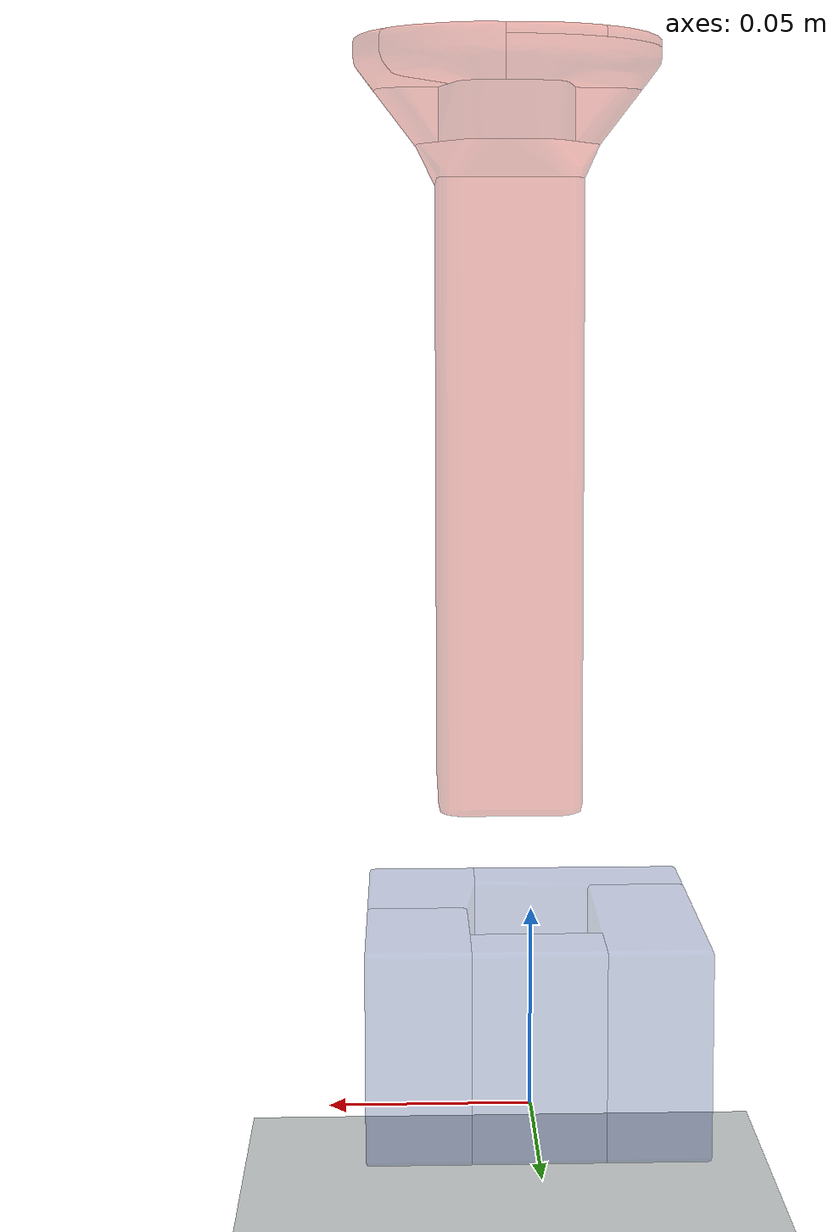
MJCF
<mujoco model="rect_peg_in_hole_mesh_coacd_t005_soft">

  <compiler angle="radian"
            meshdir="../urdf/meshes"/>

  <option timestep="0.005"
          solver="Newton"
          iterations="10"
          ls_iterations="50"
          gravity="0 0 0"
          cone="pyramidal"/>

  <custom>
    <numeric data="120" name="max_contact_points"/>
    <numeric data="120" name="max_geom_pairs"/>
  </custom>

  <visual>
    <global offwidth="1280" offheight="900"/>
    <headlight ambient="0.35 0.35 0.35" diffuse="0.65 0.65 0.65" specular="0.1 0.1 0.1"/>
  </visual>

  <asset>
    <mesh name="rectangular_peg_visual_mesh" file="rectangular_peg.obj"/>
    <mesh name="rectangular_hole_visual_mesh" file="rectangular_hole.obj"/>
    <mesh name="rectangular_peg_coacd_000_mesh" file="coacd_rect_peg_in_hole_t005/rectangular_peg_coacd_000.obj"/>
    <mesh name="rectangular_peg_coacd_001_mesh" file="coacd_rect_peg_in_hole_t005/rectangular_peg_coacd_001.obj"/>
    <mesh name="rectangular_peg_coacd_002_mesh" file="coacd_rect_peg_in_hole_t005/rectangular_peg_coacd_002.obj"/>
    <mesh name="rectangular_peg_coacd_003_mesh" file="coacd_rect_peg_in_hole_t005/rectangular_peg_coacd_003.obj"/>
    <mesh name="rectangular_peg_coacd_004_mesh" file="coacd_rect_peg_in_hole_t005/rectangular_peg_coacd_004.obj"/>
    <mesh name="rectangular_peg_coacd_005_mesh" file="coacd_rect_peg_in_hole_t005/rectangular_peg_coacd_005.obj"/>
    <mesh name="rectangular_peg_coacd_006_mesh" file="coacd_rect_peg_in_hole_t005/rectangular_peg_coacd_006.obj"/>
    <mesh name="rectangular_peg_coacd_007_mesh" file="coacd_rect_peg_in_hole_t005/rectangular_peg_coacd_007.obj"/>
    <mesh name="rectangular_peg_coacd_008_mesh" file="coacd_rect_peg_in_hole_t005/rectangular_peg_coacd_008.obj"/>
    <mesh name="rectangular_peg_coacd_009_mesh" file="coacd_rect_peg_in_hole_t005/rectangular_peg_coacd_009.obj"/>
    <mesh name="rectangular_peg_coacd_010_mesh" file="coacd_rect_peg_in_hole_t005/rectangular_peg_coacd_010.obj"/>
    <mesh name="rectangular_peg_coacd_011_mesh" file="coacd_rect_peg_in_hole_t005/rectangular_peg_coacd_011.obj"/>
    <mesh name="rectangular_peg_coacd_012_mesh" file="coacd_rect_peg_in_hole_t005/rectangular_peg_coacd_012.obj"/>
    <mesh name="rectangular_peg_coacd_013_mesh" file="coacd_rect_peg_in_hole_t005/rectangular_peg_coacd_013.obj"/>
    <mesh name="rectangular_peg_coacd_014_mesh" file="coacd_rect_peg_in_hole_t005/rectangular_peg_coacd_014.obj"/>
    <mesh name="rectangular_hole_coacd_000_mesh" file="coacd_rect_peg_in_hole_t005/rectangular_hole_coacd_000.obj"/>
    <mesh name="rectangular_hole_coacd_001_mesh" file="coacd_rect_peg_in_hole_t005/rectangular_hole_coacd_001.obj"/>
    <mesh name="rectangular_hole_coacd_002_mesh" file="coacd_rect_peg_in_hole_t005/rectangular_hole_coacd_002.obj"/>
    <mesh name="rectangular_hole_coacd_003_mesh" file="coacd_rect_peg_in_hole_t005/rectangular_hole_coacd_003.obj"/>
    <mesh name="rectangular_hole_coacd_004_mesh" file="coacd_rect_peg_in_hole_t005/rectangular_hole_coacd_004.obj"/>

    <texture name="checker" type="2d" builtin="checker"
             width="512" height="512"
             rgb1="0.92 0.92 0.88" rgb2="0.68 0.72 0.76"/>
    <material name="checker_mat" texture="checker" texrepeat="10 10" reflectance="0.15"/>
  </asset>

  <default>
    <geom condim="3"
          friction="1.0 0.005 0.0001"
          solref="0.03 1"
          solimp="0 0.9 0.01 0.5 2"/>
  </default>

  <worldbody>
    <light name="key_light" pos="0.35 -0.55 1.0" dir="-0.35 0.55 -1"/>
    <geom name="floor"
          type="plane"
          pos="0 0 -0.026"
          size="0.5 0.5 0.01"
          contype="0"
          conaffinity="0"
          material="checker_mat"/>

    <geom name="hole_visual"
          type="mesh"
          mesh="rectangular_hole_visual_mesh"
          pos="0 0 0"
          contype="0"
          conaffinity="0"
          rgba="0.68 0.73 0.82 0.35"/>
    <geom name="rectangular_hole_coacd_000_collision"
          type="mesh"
          mesh="rectangular_hole_coacd_000_mesh"
          pos="0 0 0"
          contype="1"
          conaffinity="1"
          rgba="0.14 0.25 0.55 0.30"/>
    <geom name="rectangular_hole_coacd_001_collision"
          type="mesh"
          mesh="rectangular_hole_coacd_001_mesh"
          pos="0 0 0"
          contype="1"
          conaffinity="1"
          rgba="0.14 0.25 0.55 0.30"/>
    <geom name="rectangular_hole_coacd_002_collision"
          type="mesh"
          mesh="rectangular_hole_coacd_002_mesh"
          pos="0 0 0"
          contype="1"
          conaffinity="1"
          rgba="0.14 0.25 0.55 0.30"/>
    <geom name="rectangular_hole_coacd_003_collision"
          type="mesh"
          mesh="rectangular_hole_coacd_003_mesh"
          pos="0 0 0"
          contype="1"
          conaffinity="1"
          rgba="0.14 0.25 0.55 0.30"/>
    <geom name="rectangular_hole_coacd_004_collision"
          type="mesh"
          mesh="rectangular_hole_coacd_004_mesh"
          pos="0 0 0"
          contype="1"
          conaffinity="1"
          rgba="0.14 0.25 0.55 0.30"/>

    <body name="peg" pos="0.006 0 0.23" euler="0 0 1.5707963267948966">
      <joint name="insertion_slide" type="slide" axis="0 0 1"/>
      <geom name="peg_visual"
            type="mesh"
            mesh="rectangular_peg_visual_mesh"
            euler="1.5707963267948966 0 0"
            density="0"
            contype="0"
            conaffinity="0"
            rgba="0.95 0.58 0.44 0.35"/>
      <geom name="rectangular_peg_coacd_000_collision"
            type="mesh"
            mesh="rectangular_peg_coacd_000_mesh"
            euler="1.5707963267948966 0 0"
            mass="0.49468"
            contype="1"
            conaffinity="1"
            rgba="0.85 0.18 0.12 0.35"/>
      <geom name="rectangular_peg_coacd_001_collision"
            type="mesh"
            mesh="rectangular_peg_coacd_001_mesh"
            euler="1.5707963267948966 0 0"
            density="0"
            contype="1"
            conaffinity="1"
            rgba="0.85 0.18 0.12 0.35"/>
      <geom name="rectangular_peg_coacd_002_collision"
            type="mesh"
            mesh="rectangular_peg_coacd_002_mesh"
            euler="1.5707963267948966 0 0"
            density="0"
            contype="1"
            conaffinity="1"
            rgba="0.85 0.18 0.12 0.35"/>
      <geom name="rectangular_peg_coacd_003_collision"
            type="mesh"
            mesh="rectangular_peg_coacd_003_mesh"
            euler="1.5707963267948966 0 0"
            density="0"
            contype="1"
            conaffinity="1"
            rgba="0.85 0.18 0.12 0.35"/>
      <geom name="rectangular_peg_coacd_004_collision"
            type="mesh"
            mesh="rectangular_peg_coacd_004_mesh"
            euler="1.5707963267948966 0 0"
            density="0"
            contype="1"
            conaffinity="1"
            rgba="0.85 0.18 0.12 0.35"/>
      <geom name="rectangular_peg_coacd_005_collision"
            type="mesh"
            mesh="rectangular_peg_coacd_005_mesh"
            euler="1.5707963267948966 0 0"
            density="0"
            contype="1"
            conaffinity="1"
            rgba="0.85 0.18 0.12 0.35"/>
      <geom name="rectangular_peg_coacd_006_collision"
            type="mesh"
            mesh="rectangular_peg_coacd_006_mesh"
            euler="1.5707963267948966 0 0"
            density="0"
            contype="1"
            conaffinity="1"
            rgba="0.85 0.18 0.12 0.35"/>
      <geom name="rectangular_peg_coacd_007_collision"
            type="mesh"
            mesh="rectangular_peg_coacd_007_mesh"
            euler="1.5707963267948966 0 0"
            density="0"
            contype="1"
            conaffinity="1"
            rgba="0.85 0.18 0.12 0.35"/>
      <geom name="rectangular_peg_coacd_008_collision"
            type="mesh"
            mesh="rectangular_peg_coacd_008_mesh"
            euler="1.5707963267948966 0 0"
            density="0"
            contype="1"
            conaffinity="1"
            rgba="0.85 0.18 0.12 0.35"/>
      <geom name="rectangular_peg_coacd_009_collision"
            type="mesh"
            mesh="rectangular_peg_coacd_009_mesh"
            euler="1.5707963267948966 0 0"
            density="0"
            contype="1"
            conaffinity="1"
            rgba="0.85 0.18 0.12 0.35"/>
      <geom name="rectangular_peg_coacd_010_collision"
            type="mesh"
            mesh="rectangular_peg_coacd_010_mesh"
            euler="1.5707963267948966 0 0"
            density="0"
            contype="1"
            conaffinity="1"
            rgba="0.85 0.18 0.12 0.35"/>
      <geom name="rectangular_peg_coacd_011_collision"
            type="mesh"
            mesh="rectangular_peg_coacd_011_mesh"
            euler="1.5707963267948966 0 0"
            density="0"
            contype="1"
            conaffinity="1"
            rgba="0.85 0.18 0.12 0.35"/>
      <geom name="rectangular_peg_coacd_012_collision"
            type="mesh"
            mesh="rectangular_peg_coacd_012_mesh"
            euler="1.5707963267948966 0 0"
            density="0"
            contype="1"
            conaffinity="1"
            rgba="0.85 0.18 0.12 0.35"/>
      <geom name="rectangular_peg_coacd_013_collision"
            type="mesh"
            mesh="rectangular_peg_coacd_013_mesh"
            euler="1.5707963267948966 0 0"
            density="0"
            contype="1"
            conaffinity="1"
            rgba="0.85 0.18 0.12 0.35"/>
      <geom name="rectangular_peg_coacd_014_collision"
            type="mesh"
            mesh="rectangular_peg_coacd_014_mesh"
            euler="1.5707963267948966 0 0"
            density="0"
            contype="1"
            conaffinity="1"
            rgba="0.85 0.18 0.12 0.35"/>
    </body>
  </worldbody>

  <actuator>
    <velocity name="insertion_velocity_servo"
              joint="insertion_slide"
              kv="20"
              ctrllimited="true"
              ctrlrange="-1 1"/>
  </actuator>
</mujoco>
